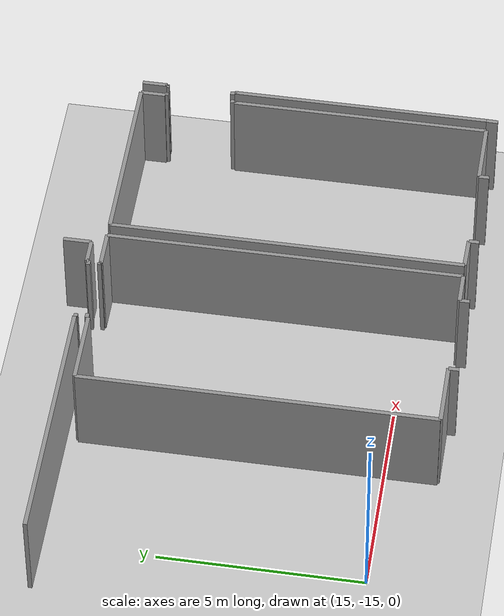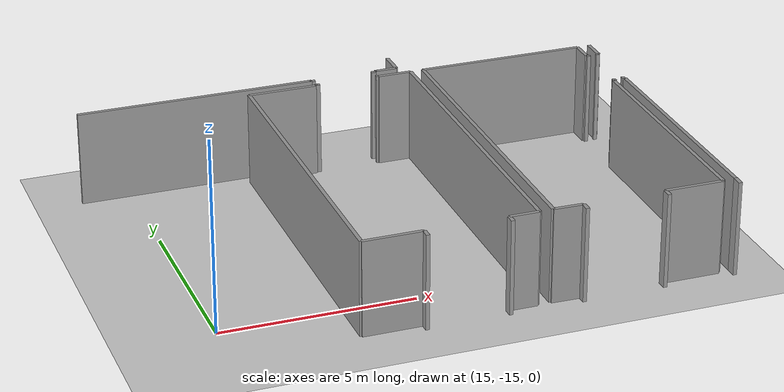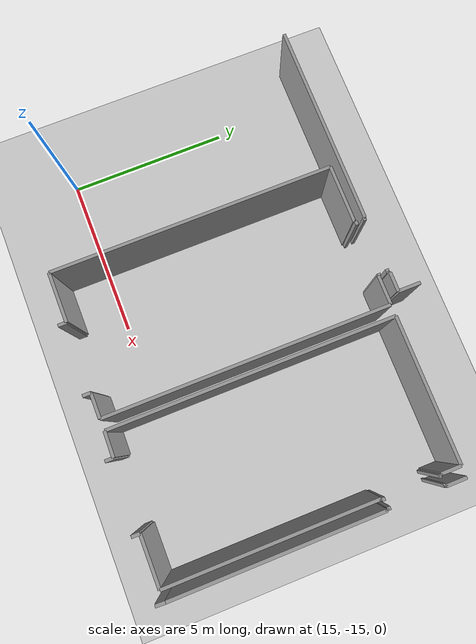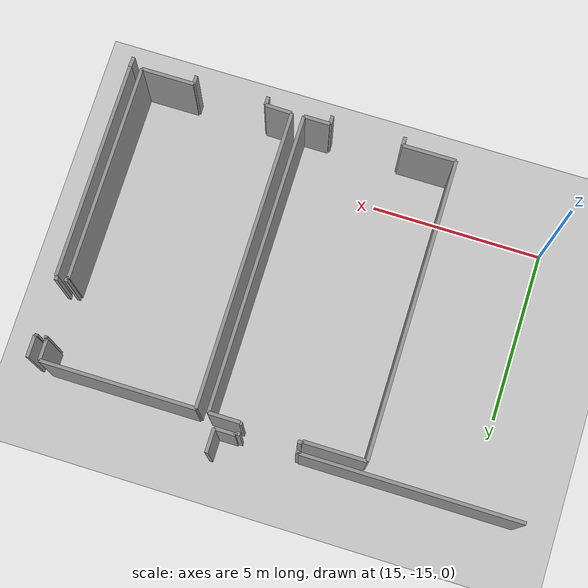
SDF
<sdf version="1.6">
 <world name="default">
  <model name="ground_plane">
   <static>1</static>
   <link name="link">
    <collision name="collision">
     <geometry><plane><normal>0 0 1</normal><size>100 100</size></plane></geometry>
     <surface><friction><ode><mu>100</mu><mu2>50</mu2></ode></friction></surface>
    </collision>
    <visual name="visual">
     <cast_shadows>0</cast_shadows>
     <geometry><plane><normal>0 0 1</normal><size>100 100</size></plane></geometry>
     <material>
      <script><uri>file://media/materials/scripts/gazebo.material</uri><name>Gazebo/Grey</name></script>
     </material>
    </visual>
   </link>
  </model>
  <model name="0510032261_A_40_1_103">
   <static>1</static>
   <link name="Wall_466">
    <collision name="Wall_466_Collision">
     <geometry><box><size>8.71385006353 0.1 2.5</size></box></geometry>
     <pose>4.35692503177 0 1.25 0 0 0</pose>
    </collision>
    <visual name="Wall_466_Visual">
     <pose>4.35692503177 0 1.25 0 0 0</pose>
     <geometry><box><size>8.71385006353 0.1 2.5</size></box></geometry>
     <material>
      <script><uri>file://media/materials/scripts/gazebo.material</uri><name>Gazebo/Grey</name></script>
      <ambient>1 1 1 1</ambient>
     </material>
    </visual>
    <pose>67.2950444727 -32.8139771283 0 0 0 1.57079632679</pose>
   </link>
   <link name="Wall_467">
    <collision name="Wall_467_Collision">
     <geometry><box><size>1.80559085133 0.1 2.5</size></box></geometry>
     <pose>0.902795425667 0 1.25 0 0 0</pose>
    </collision>
    <visual name="Wall_467_Visual">
     <pose>0.902795425667 0 1.25 0 0 0</pose>
     <geometry><box><size>1.80559085133 0.1 2.5</size></box></geometry>
     <material>
      <script><uri>file://media/materials/scripts/gazebo.material</uri><name>Gazebo/Grey</name></script>
      <ambient>1 1 1 1</ambient>
     </material>
    </visual>
    <pose>67.2950444727 -24.1001270648 0 0 0 0.0</pose>
   </link>
   <link name="Wall_468">
    <collision name="Wall_468_Collision">
     <geometry><box><size>0.0376111817027 0.1 2.5</size></box></geometry>
     <pose>0.0188055908513 0 1.25 0 0 0</pose>
    </collision>
    <visual name="Wall_468_Visual">
     <pose>0.0188055908513 0 1.25 0 0 0</pose>
     <geometry><box><size>0.0376111817027 0.1 2.5</size></box></geometry>
     <material>
      <script><uri>file://media/materials/scripts/gazebo.material</uri><name>Gazebo/Grey</name></script>
      <ambient>1 1 1 1</ambient>
     </material>
    </visual>
    <pose>69.100635324 -24.1001270648 0 0 0 1.57079632679</pose>
   </link>
   <link name="Wall_469">
    <collision name="Wall_469_Collision">
     <geometry><box><size>0.120203303685 0.1 2.5</size></box></geometry>
     <pose>0.0601016518424 0 1.25 0 0 0</pose>
    </collision>
    <visual name="Wall_469_Visual">
     <pose>0.0601016518424 0 1.25 0 0 0</pose>
     <geometry><box><size>0.120203303685 0.1 2.5</size></box></geometry>
     <material>
      <script><uri>file://media/materials/scripts/gazebo.material</uri><name>Gazebo/Grey</name></script>
      <ambient>1 1 1 1</ambient>
     </material>
    </visual>
    <pose>69.100635324 -24.0625158831 0 0 0 0.0</pose>
   </link>
   <link name="Wall_470">
    <collision name="Wall_470_Collision">
     <geometry><box><size>0.0601016518424 0.1 2.5</size></box></geometry>
     <pose>0.0300508259212 0 1.25 0 0 0</pose>
    </collision>
    <visual name="Wall_470_Visual">
     <pose>0.0300508259212 0 1.25 0 0 0</pose>
     <geometry><box><size>0.0601016518424 0.1 2.5</size></box></geometry>
     <material>
      <script><uri>file://media/materials/scripts/gazebo.material</uri><name>Gazebo/Grey</name></script>
      <ambient>1 1 1 1</ambient>
     </material>
    </visual>
    <pose>70.7693773825 -24.0625158831 0 0 0 0.0</pose>
   </link>
   <link name="Wall_471">
    <collision name="Wall_471_Collision">
     <geometry><box><size>0.0301143583227 0.1 2.5</size></box></geometry>
     <pose>0.0150571791614 0 1.25 0 0 0</pose>
    </collision>
    <visual name="Wall_471_Visual">
     <pose>0.0150571791614 0 1.25 0 0 0</pose>
     <geometry><box><size>0.0301143583227 0.1 2.5</size></box></geometry>
     <material>
      <script><uri>file://media/materials/scripts/gazebo.material</uri><name>Gazebo/Grey</name></script>
      <ambient>1 1 1 1</ambient>
     </material>
    </visual>
    <pose>70.8294790343 -24.0625158831 0 0 0 -1.57079632679</pose>
   </link>
   <link name="Wall_472">
    <collision name="Wall_472_Collision">
     <geometry><box><size>0.898602287166 0.1 2.5</size></box></geometry>
     <pose>0.449301143583 0 1.25 0 0 0</pose>
    </collision>
    <visual name="Wall_472_Visual">
     <pose>0.449301143583 0 1.25 0 0 0</pose>
     <geometry><box><size>0.898602287166 0.1 2.5</size></box></geometry>
     <material>
      <script><uri>file://media/materials/scripts/gazebo.material</uri><name>Gazebo/Grey</name></script>
      <ambient>1 1 1 1</ambient>
     </material>
    </visual>
    <pose>70.8294790343 -24.0926302414 0 0 0 0.0</pose>
   </link>
   <link name="Wall_473">
    <collision name="Wall_473_Collision">
     <geometry><box><size>8.72554002541 0.1 2.5</size></box></geometry>
     <pose>4.36277001271 0 1.25 0 0 0</pose>
    </collision>
    <visual name="Wall_473_Visual">
     <pose>4.36277001271 0 1.25 0 0 0</pose>
     <geometry><box><size>8.72554002541 0.1 2.5</size></box></geometry>
     <material>
      <script><uri>file://media/materials/scripts/gazebo.material</uri><name>Gazebo/Grey</name></script>
      <ambient>1 1 1 1</ambient>
     </material>
    </visual>
    <pose>71.7280813215 -24.0926302414 0 0 0 -1.57079632679</pose>
   </link>
   <link name="Wall_474">
    <collision name="Wall_474_Collision">
     <geometry><box><size>0.76581956798 0.1 2.5</size></box></geometry>
     <pose>0.38290978399 0 1.25 0 0 0</pose>
    </collision>
    <visual name="Wall_474_Visual">
     <pose>0.38290978399 0 1.25 0 0 0</pose>
     <geometry><box><size>0.76581956798 0.1 2.5</size></box></geometry>
     <material>
      <script><uri>file://media/materials/scripts/gazebo.material</uri><name>Gazebo/Grey</name></script>
      <ambient>1 1 1 1</ambient>
     </material>
    </visual>
    <pose>71.7280813215 -32.8181702668 0 0 0 3.14159265359</pose>
   </link>
   <link name="Wall_475">
    <collision name="Wall_475_Collision">
     <geometry><box><size>0.245616264295 0.1 2.5</size></box></geometry>
     <pose>0.122808132147 0 1.25 0 0 0</pose>
    </collision>
    <visual name="Wall_475_Visual">
     <pose>0.122808132147 0 1.25 0 0 0</pose>
     <geometry><box><size>0.245616264295 0.1 2.5</size></box></geometry>
     <material>
      <script><uri>file://media/materials/scripts/gazebo.material</uri><name>Gazebo/Grey</name></script>
      <ambient>1 1 1 1</ambient>
     </material>
    </visual>
    <pose>70.9622617535 -32.8181702668 0 0 0 -1.57079632679</pose>
   </link>
   <link name="Wall_476">
    <collision name="Wall_476_Collision">
     <geometry><box><size>0.253113087675 0.1 2.5</size></box></geometry>
     <pose>0.126556543837 0 1.25 0 0 0</pose>
    </collision>
    <visual name="Wall_476_Visual">
     <pose>0.126556543837 0 1.25 0 0 0</pose>
     <geometry><box><size>0.253113087675 0.1 2.5</size></box></geometry>
     <material>
      <script><uri>file://media/materials/scripts/gazebo.material</uri><name>Gazebo/Grey</name></script>
      <ambient>1 1 1 1</ambient>
     </material>
    </visual>
    <pose>68.8445997459 -33.0637865311 0 0 0 1.57079632679</pose>
   </link>
   <link name="Wall_477">
    <collision name="Wall_477_Collision">
     <geometry><box><size>1.54955879495 0.1 2.5</size></box></geometry>
     <pose>0.774779397474 0 1.25 0 0 0</pose>
    </collision>
    <visual name="Wall_477_Visual">
     <pose>0.774779397474 0 1.25 0 0 0</pose>
     <geometry><box><size>1.54955879495 0.1 2.5</size></box></geometry>
     <material>
      <script><uri>file://media/materials/scripts/gazebo.material</uri><name>Gazebo/Grey</name></script>
      <ambient>1 1 1 1</ambient>
     </material>
    </visual>
    <pose>68.8445997459 -32.8106734435 0 0 0 -3.1394606355</pose>
   </link>
   <link name="Wall_478">
    <collision name="Wall_478_Collision">
     <geometry><box><size>8.70889453621 0.1 2.5</size></box></geometry>
     <pose>4.35444726811 0 1.25 0 0 0</pose>
    </collision>
    <visual name="Wall_478_Visual">
     <pose>4.35444726811 0 1.25 0 0 0</pose>
     <geometry><box><size>8.70889453621 0.1 2.5</size></box></geometry>
     <material>
      <script><uri>file://media/materials/scripts/gazebo.material</uri><name>Gazebo/Grey</name></script>
      <ambient>1 1 1 1</ambient>
     </material>
    </visual>
    <pose>72.0789072427 -32.8055908513 0 0 0 1.57079632679</pose>
   </link>
   <link name="Wall_479">
    <collision name="Wall_479_Collision">
     <geometry><box><size>4.43405336722 0.1 2.5</size></box></geometry>
     <pose>2.21702668361 0 1.25 0 0 0</pose>
    </collision>
    <visual name="Wall_479_Visual">
     <pose>2.21702668361 0 1.25 0 0 0</pose>
     <geometry><box><size>4.43405336722 0.1 2.5</size></box></geometry>
     <material>
      <script><uri>file://media/materials/scripts/gazebo.material</uri><name>Gazebo/Grey</name></script>
      <ambient>1 1 1 1</ambient>
     </material>
    </visual>
    <pose>72.0789072427 -24.0966963151 0 0 0 0.0</pose>
   </link>
   <link name="Wall_480">
    <collision name="Wall_480_Collision">
     <geometry><box><size>0.610546378653 0.1 2.5</size></box></geometry>
     <pose>0.305273189327 0 1.25 0 0 0</pose>
    </collision>
    <visual name="Wall_480_Visual">
     <pose>0.305273189327 0 1.25 0 0 0</pose>
     <geometry><box><size>0.610546378653 0.1 2.5</size></box></geometry>
     <material>
      <script><uri>file://media/materials/scripts/gazebo.material</uri><name>Gazebo/Grey</name></script>
      <ambient>1 1 1 1</ambient>
     </material>
    </visual>
    <pose>76.5129606099 -24.0966963151 0 0 0 -1.57079632679</pose>
   </link>
   <link name="Wall_481">
    <collision name="Wall_481_Collision">
     <geometry><box><size>0.0353240152478 0.1 2.5</size></box></geometry>
     <pose>0.0176620076239 0 1.25 0 0 0</pose>
    </collision>
    <visual name="Wall_481_Visual">
     <pose>0.0176620076239 0 1.25 0 0 0</pose>
     <geometry><box><size>0.0353240152478 0.1 2.5</size></box></geometry>
     <material>
      <script><uri>file://media/materials/scripts/gazebo.material</uri><name>Gazebo/Grey</name></script>
      <ambient>1 1 1 1</ambient>
     </material>
    </visual>
    <pose>76.5129606099 -24.7072426938 0 0 0 0.0</pose>
   </link>
   <link name="Wall_482">
    <collision name="Wall_482_Collision">
     <geometry><box><size>0.0825921219822 0.1 2.5</size></box></geometry>
     <pose>0.0412960609911 0 1.25 0 0 0</pose>
    </collision>
    <visual name="Wall_482_Visual">
     <pose>0.0412960609911 0 1.25 0 0 0</pose>
     <geometry><box><size>0.0825921219822 0.1 2.5</size></box></geometry>
     <material>
      <script><uri>file://media/materials/scripts/gazebo.material</uri><name>Gazebo/Grey</name></script>
      <ambient>1 1 1 1</ambient>
     </material>
    </visual>
    <pose>76.5482846252 -24.7072426938 0 0 0 -1.57079632679</pose>
   </link>
   <link name="Wall_483">
    <collision name="Wall_483_Collision">
     <geometry><box><size>0.101143583227 0.1 2.5</size></box></geometry>
     <pose>0.0505717916137 0 1.25 0 0 0</pose>
    </collision>
    <visual name="Wall_483_Visual">
     <pose>0.0505717916137 0 1.25 0 0 0</pose>
     <geometry><box><size>0.101143583227 0.1 2.5</size></box></geometry>
     <material>
      <script><uri>file://media/materials/scripts/gazebo.material</uri><name>Gazebo/Grey</name></script>
      <ambient>1 1 1 1</ambient>
     </material>
    </visual>
    <pose>76.5482846252 -26.3667090216 0 0 0 -1.57079632679</pose>
   </link>
   <link name="Wall_484">
    <collision name="Wall_484_Collision">
     <geometry><box><size>0.0353240152478 0.1 2.5</size></box></geometry>
     <pose>0.0176620076239 0 1.25 0 0 0</pose>
    </collision>
    <visual name="Wall_484_Visual">
     <pose>0.0176620076239 0 1.25 0 0 0</pose>
     <geometry><box><size>0.0353240152478 0.1 2.5</size></box></geometry>
     <material>
      <script><uri>file://media/materials/scripts/gazebo.material</uri><name>Gazebo/Grey</name></script>
      <ambient>1 1 1 1</ambient>
     </material>
    </visual>
    <pose>76.5482846252 -26.4678526048 0 0 0 3.14159265359</pose>
   </link>
   <link name="Wall_485">
    <collision name="Wall_485_Collision">
     <geometry><box><size>6.35095298602 0.1 2.5</size></box></geometry>
     <pose>3.17547649301 0 1.25 0 0 0</pose>
    </collision>
    <visual name="Wall_485_Visual">
     <pose>3.17547649301 0 1.25 0 0 0</pose>
     <geometry><box><size>6.35095298602 0.1 2.5</size></box></geometry>
     <material>
      <script><uri>file://media/materials/scripts/gazebo.material</uri><name>Gazebo/Grey</name></script>
      <ambient>1 1 1 1</ambient>
     </material>
    </visual>
    <pose>76.5129606099 -26.4678526048 0 0 0 -1.57079632679</pose>
   </link>
   <link name="Wall_486">
    <collision name="Wall_486_Collision">
     <geometry><box><size>1.5376111817 0.1 2.5</size></box></geometry>
     <pose>0.768805590851 0 1.25 0 0 0</pose>
    </collision>
    <visual name="Wall_486_Visual">
     <pose>0.768805590851 0 1.25 0 0 0</pose>
     <geometry><box><size>1.5376111817 0.1 2.5</size></box></geometry>
     <material>
      <script><uri>file://media/materials/scripts/gazebo.material</uri><name>Gazebo/Grey</name></script>
      <ambient>1 1 1 1</ambient>
     </material>
    </visual>
    <pose>76.5129606099 -32.8188055909 0 0 0 3.14159265359</pose>
   </link>
   <link name="Wall_487">
    <collision name="Wall_487_Collision">
     <geometry><box><size>0.251080050826 0.1 2.5</size></box></geometry>
     <pose>0.125540025413 0 1.25 0 0 0</pose>
    </collision>
    <visual name="Wall_487_Visual">
     <pose>0.125540025413 0 1.25 0 0 0</pose>
     <geometry><box><size>0.251080050826 0.1 2.5</size></box></geometry>
     <material>
      <script><uri>file://media/materials/scripts/gazebo.material</uri><name>Gazebo/Grey</name></script>
      <ambient>1 1 1 1</ambient>
     </material>
    </visual>
    <pose>74.9753494282 -32.8188055909 0 0 0 -1.57079632679</pose>
   </link>
   <link name="Wall_488">
    <collision name="Wall_488_Collision">
     <geometry><box><size>0.248538754765 0.1 2.5</size></box></geometry>
     <pose>0.124269377382 0 1.25 0 0 0</pose>
    </collision>
    <visual name="Wall_488_Visual">
     <pose>0.124269377382 0 1.25 0 0 0</pose>
     <geometry><box><size>0.248538754765 0.1 2.5</size></box></geometry>
     <material>
      <script><uri>file://media/materials/scripts/gazebo.material</uri><name>Gazebo/Grey</name></script>
      <ambient>1 1 1 1</ambient>
     </material>
    </visual>
    <pose>72.8532401525 -33.0698856417 0 0 0 1.57079632679</pose>
   </link>
   <link name="Wall_489">
    <collision name="Wall_489_Collision">
     <geometry><box><size>0.77449319418 0.1 2.5</size></box></geometry>
     <pose>0.38724659709 0 1.25 0 0 0</pose>
    </collision>
    <visual name="Wall_489_Visual">
     <pose>0.38724659709 0 1.25 0 0 0</pose>
     <geometry><box><size>0.77449319418 0.1 2.5</size></box></geometry>
     <material>
      <script><uri>file://media/materials/scripts/gazebo.material</uri><name>Gazebo/Grey</name></script>
      <ambient>1 1 1 1</ambient>
     </material>
    </visual>
    <pose>72.8532401525 -32.8213468869 0 0 0 3.12124757798</pose>
   </link>
   <link name="Wall_490">
    <collision name="Wall_490_Collision">
     <geometry><box><size>6.35387547649 0.1 2.5</size></box></geometry>
     <pose>3.17693773825 0 1.25 0 0 0</pose>
    </collision>
    <visual name="Wall_490_Visual">
     <pose>3.17693773825 0 1.25 0 0 0</pose>
     <geometry><box><size>6.35387547649 0.1 2.5</size></box></geometry>
     <material>
      <script><uri>file://media/materials/scripts/gazebo.material</uri><name>Gazebo/Grey</name></script>
      <ambient>1 1 1 1</ambient>
     </material>
    </visual>
    <pose>76.8528589581 -32.7861499365 0 0 0 1.57079632679</pose>
   </link>
   <link name="Wall_491">
    <collision name="Wall_491_Collision">
     <geometry><box><size>0.0320203303685 0.1 2.5</size></box></geometry>
     <pose>0.0160101651842 0 1.25 0 0 0</pose>
    </collision>
    <visual name="Wall_491_Visual">
     <pose>0.0160101651842 0 1.25 0 0 0</pose>
     <geometry><box><size>0.0320203303685 0.1 2.5</size></box></geometry>
     <material>
      <script><uri>file://media/materials/scripts/gazebo.material</uri><name>Gazebo/Grey</name></script>
      <ambient>1 1 1 1</ambient>
     </material>
    </visual>
    <pose>76.8528589581 -26.43227446 0 0 0 3.14159265359</pose>
   </link>
   <link name="Wall_492">
    <collision name="Wall_492_Collision">
     <geometry><box><size>0.108386277001 0.1 2.5</size></box></geometry>
     <pose>0.0541931385006 0 1.25 0 0 0</pose>
    </collision>
    <visual name="Wall_492_Visual">
     <pose>0.0541931385006 0 1.25 0 0 0</pose>
     <geometry><box><size>0.108386277001 0.1 2.5</size></box></geometry>
     <material>
      <script><uri>file://media/materials/scripts/gazebo.material</uri><name>Gazebo/Grey</name></script>
      <ambient>1 1 1 1</ambient>
     </material>
    </visual>
    <pose>76.8208386277 -26.43227446 0 0 0 1.57079632679</pose>
   </link>
   <link name="Wall_493">
    <collision name="Wall_493_Collision">
     <geometry><box><size>0.0621346886912 0.1 2.5</size></box></geometry>
     <pose>0.0310673443456 0 1.25 0 0 0</pose>
    </collision>
    <visual name="Wall_493_Visual">
     <pose>0.0310673443456 0 1.25 0 0 0</pose>
     <geometry><box><size>0.0621346886912 0.1 2.5</size></box></geometry>
     <material>
      <script><uri>file://media/materials/scripts/gazebo.material</uri><name>Gazebo/Grey</name></script>
      <ambient>1 1 1 1</ambient>
     </material>
    </visual>
    <pose>76.8208386277 -24.7650571792 0 0 0 1.57079632679</pose>
   </link>
   <link name="Wall_494">
    <collision name="Wall_494_Collision">
     <geometry><box><size>0.0326556543837 0.1 2.5</size></box></geometry>
     <pose>0.0163278271919 0 1.25 0 0 0</pose>
    </collision>
    <visual name="Wall_494_Visual">
     <pose>0.0163278271919 0 1.25 0 0 0</pose>
     <geometry><box><size>0.0326556543837 0.1 2.5</size></box></geometry>
     <material>
      <script><uri>file://media/materials/scripts/gazebo.material</uri><name>Gazebo/Grey</name></script>
      <ambient>1 1 1 1</ambient>
     </material>
    </visual>
    <pose>76.8208386277 -24.7029224905 0 0 0 0.0</pose>
   </link>
   <link name="Wall_495">
    <collision name="Wall_495_Collision">
     <geometry><box><size>0.619313850064 0.1 2.5</size></box></geometry>
     <pose>0.309656925032 0 1.25 0 0 0</pose>
    </collision>
    <visual name="Wall_495_Visual">
     <pose>0.309656925032 0 1.25 0 0 0</pose>
     <geometry><box><size>0.619313850064 0.1 2.5</size></box></geometry>
     <material>
      <script><uri>file://media/materials/scripts/gazebo.material</uri><name>Gazebo/Grey</name></script>
      <ambient>1 1 1 1</ambient>
     </material>
    </visual>
    <pose>76.8534942821 -24.7029224905 0 0 0 1.57079632679</pose>
   </link>
   <link name="Wall_508">
    <collision name="Wall_508_Collision">
     <geometry><box><size>0.287981240557 0.1 2.5</size></box></geometry>
     <pose>0.143990620279 0 1.25 0 0 0</pose>
    </collision>
    <visual name="Wall_508_Visual">
     <pose>0.143990620279 0 1.25 0 0 0</pose>
     <geometry><box><size>0.287981240557 0.1 2.5</size></box></geometry>
     <material>
      <script><uri>file://media/materials/scripts/gazebo.material</uri><name>Gazebo/Grey</name></script>
      <ambient>1 1 1 1</ambient>
     </material>
    </visual>
    <pose>76.8426937738 -33.0739517154 0 0 0 1.53549091488</pose>
   </link>
   <link name="Wall_581">
    <collision name="Wall_581_Collision">
     <geometry><box><size>0.690470139771 0.1 2.5</size></box></geometry>
     <pose>0.345235069886 0 1.25 0 0 0</pose>
    </collision>
    <visual name="Wall_581_Visual">
     <pose>0.345235069886 0 1.25 0 0 0</pose>
     <geometry><box><size>0.690470139771 0.1 2.5</size></box></geometry>
     <material>
      <script><uri>file://media/materials/scripts/gazebo.material</uri><name>Gazebo/Grey</name></script>
      <ambient>1 1 1 1</ambient>
     </material>
    </visual>
    <pose>71.4527318933 -23.0546378653 0 0 0 -1.57079632679</pose>
   </link>
   <link name="Wall_582">
    <collision name="Wall_582_Collision">
     <geometry><box><size>0.598856416773 0.1 2.5</size></box></geometry>
     <pose>0.299428208386 0 1.25 0 0 0</pose>
    </collision>
    <visual name="Wall_582_Visual">
     <pose>0.299428208386 0 1.25 0 0 0</pose>
     <geometry><box><size>0.598856416773 0.1 2.5</size></box></geometry>
     <material>
      <script><uri>file://media/materials/scripts/gazebo.material</uri><name>Gazebo/Grey</name></script>
      <ambient>1 1 1 1</ambient>
     </material>
    </visual>
    <pose>71.4527318933 -23.7451080051 0 0 0 3.14159265359</pose>
   </link>
   <link name="Wall_583">
    <collision name="Wall_583_Collision">
     <geometry><box><size>0.0467598475222 0.1 2.5</size></box></geometry>
     <pose>0.0233799237611 0 1.25 0 0 0</pose>
    </collision>
    <visual name="Wall_583_Visual">
     <pose>0.0233799237611 0 1.25 0 0 0</pose>
     <geometry><box><size>0.0467598475222 0.1 2.5</size></box></geometry>
     <material>
      <script><uri>file://media/materials/scripts/gazebo.material</uri><name>Gazebo/Grey</name></script>
      <ambient>1 1 1 1</ambient>
     </material>
    </visual>
    <pose>70.8538754765 -23.7451080051 0 0 0 -1.57079632679</pose>
   </link>
   <link name="Wall_584">
    <collision name="Wall_584_Collision">
     <geometry><box><size>0.11918678526 0.1 2.5</size></box></geometry>
     <pose>0.0595933926302 0 1.25 0 0 0</pose>
    </collision>
    <visual name="Wall_584_Visual">
     <pose>0.0595933926302 0 1.25 0 0 0</pose>
     <geometry><box><size>0.11918678526 0.1 2.5</size></box></geometry>
     <material>
      <script><uri>file://media/materials/scripts/gazebo.material</uri><name>Gazebo/Grey</name></script>
      <ambient>1 1 1 1</ambient>
     </material>
    </visual>
    <pose>70.8538754765 -23.7918678526 0 0 0 3.14159265359</pose>
   </link>
   <link name="Wall_585">
    <collision name="Wall_585_Collision">
     <geometry><box><size>0.0914866581957 0.1 2.5</size></box></geometry>
     <pose>0.0457433290978 0 1.25 0 0 0</pose>
    </collision>
    <visual name="Wall_585_Visual">
     <pose>0.0457433290978 0 1.25 0 0 0</pose>
     <geometry><box><size>0.0914866581957 0.1 2.5</size></box></geometry>
     <material>
      <script><uri>file://media/materials/scripts/gazebo.material</uri><name>Gazebo/Grey</name></script>
      <ambient>1 1 1 1</ambient>
     </material>
    </visual>
    <pose>69.1810673443 -23.7918678526 0 0 0 3.14159265359</pose>
   </link>
   <link name="Wall_586">
    <collision name="Wall_586_Collision">
     <geometry><box><size>0.0240152477764 0.1 2.5</size></box></geometry>
     <pose>0.0120076238882 0 1.25 0 0 0</pose>
    </collision>
    <visual name="Wall_586_Visual">
     <pose>0.0120076238882 0 1.25 0 0 0</pose>
     <geometry><box><size>0.0240152477764 0.1 2.5</size></box></geometry>
     <material>
      <script><uri>file://media/materials/scripts/gazebo.material</uri><name>Gazebo/Grey</name></script>
      <ambient>1 1 1 1</ambient>
     </material>
    </visual>
    <pose>69.0895806861 -23.7918678526 0 0 0 1.57079632679</pose>
   </link>
   <link name="Wall_587">
    <collision name="Wall_587_Collision">
     <geometry><box><size>6.25133418043 0.1 2.5</size></box></geometry>
     <pose>3.12566709022 0 1.25 0 0 0</pose>
    </collision>
    <visual name="Wall_587_Visual">
     <pose>3.12566709022 0 1.25 0 0 0</pose>
     <geometry><box><size>6.25133418043 0.1 2.5</size></box></geometry>
     <material>
      <script><uri>file://media/materials/scripts/gazebo.material</uri><name>Gazebo/Grey</name></script>
      <ambient>1 1 1 1</ambient>
     </material>
    </visual>
    <pose>69.0895806861 -23.7678526048 0 0 0 3.14159265359</pose>
   </link>
   <pose>-49.15 16.5314485388 0 0 0 0</pose>
  </model>
 </world>
</sdf>
